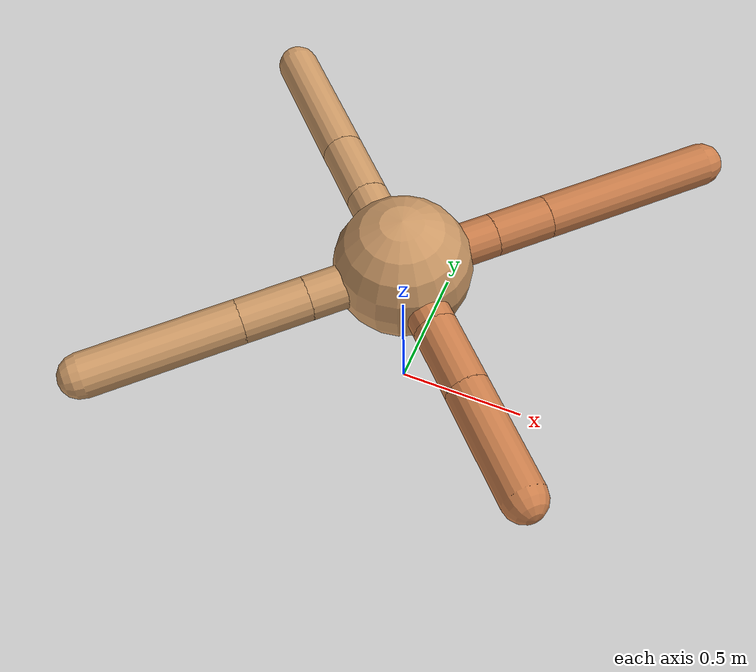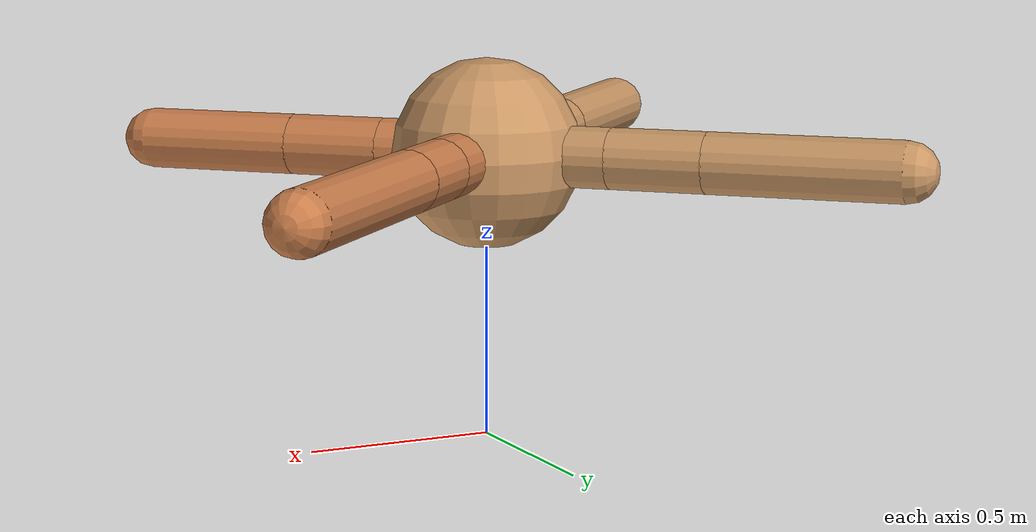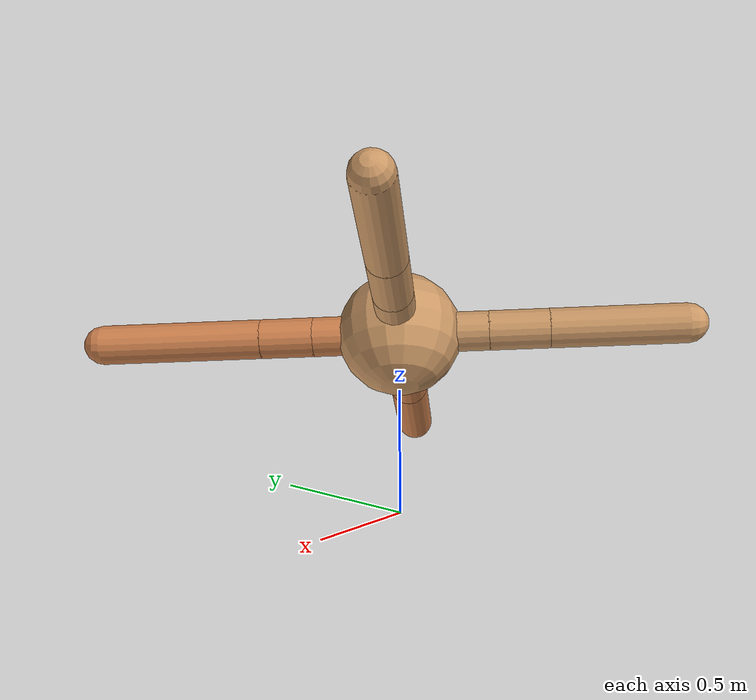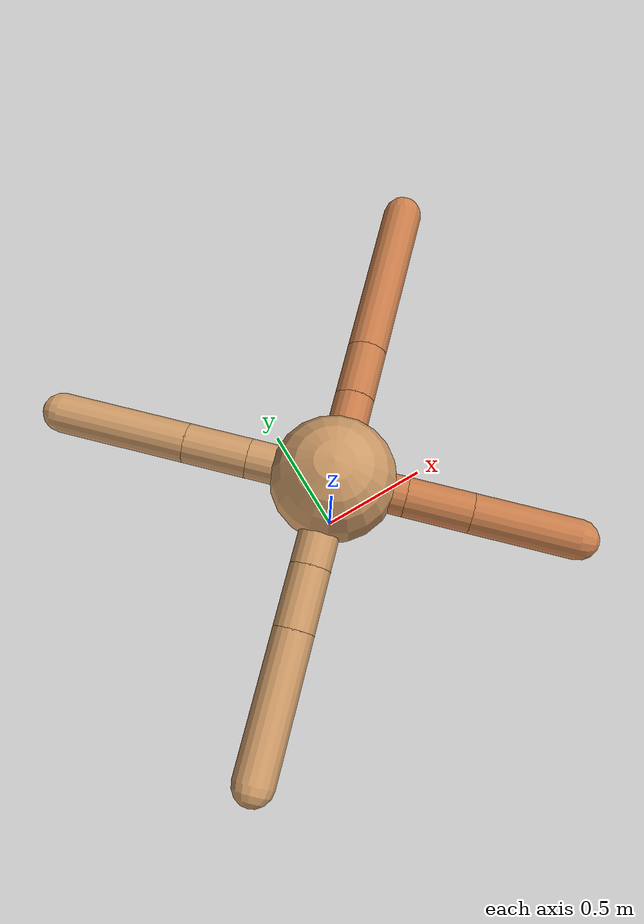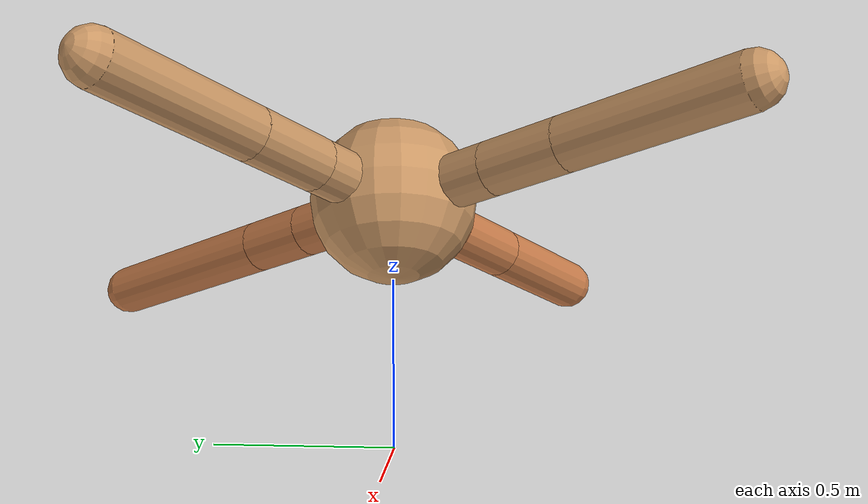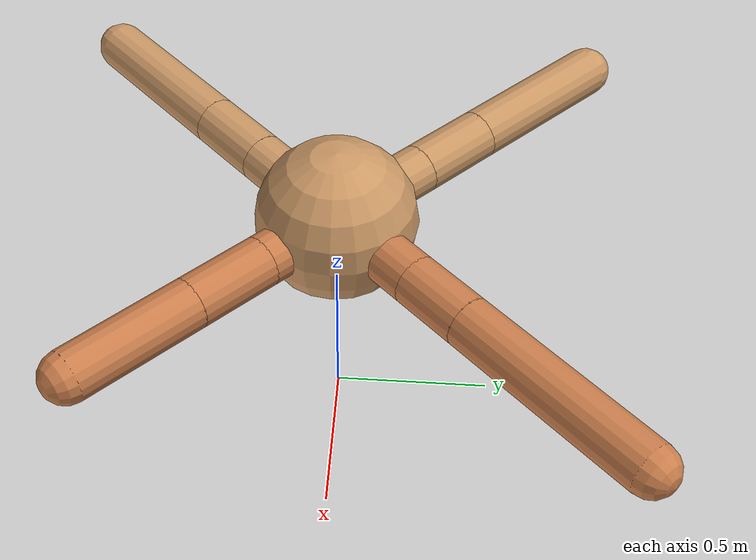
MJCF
<mujoco model="ant">
  <compiler angle="degree" coordinate="local" inertiafromgeom="true" />
  <option integrator="RK4" timestep="0.01" />
  <custom>
    <numeric data="0.0 0.0 0.55 1.0 0.0 0.0 0.0 0.0 1.0 0.0 -1.0 0.0 -1.0 0.0 1.0" name="init_qpos" />
  </custom>
  <default>
    <joint armature="1" damping="1" limited="true" />
    <geom conaffinity="0" condim="3" density="5.0" friction="1.5 0.1 0.1" margin="0.01" rgba="0.8 0.6 0.4 1" />
  </default>
  <worldbody>
    <body name="torso" pos="0 0 0.75">
      <geom name="torso_geom" pos="0 0 0" size="0.25" type="sphere" />

      <body name="front_left_leg" pos="0 0 0">
        <geom fromto="0.0 0.0 0.0 0.2466715834255073 0.2466715834255073 0.0" name="aux_1_geom" size="0.08" type="capsule" rgba=".8 .5 .3 1" />
        <body name="aux_1" pos="0.2466715834255073 0.2466715834255073 0.0">
          <joint axis="0 0 1" name="hip_1" pos="0.0 0.0 0.0" range="-40 40" type="hinge" />
          <geom fromto="0.0 0.0 0.0 0.15245155355471574 0.15245155355471574 0.0" name="left_leg_geom" size="0.08" type="capsule" rgba=".8 .5 .3 1" />
          <body pos="0.15245155355471574 0.15245155355471574 0.0" name="front_left_foot">
            <joint axis="-1 1 0" name="ankle_1" pos="0.0 0.0 0.0" range="30 100" type="hinge" />
            <geom fromto="0.0 0.0 0.0 0.46786893887945225 0.46786893887945225 0.0" name="left_ankle_geom" size="0.08" type="capsule" rgba=".8 .5 .3 1" />
          </body>
        </body>
      </body>
      <body name="front_right_leg" pos="0 0 0">
        <geom fromto="0.0 0.0 0.0 -0.24034445376594463 0.24034445376594463 0.0" name="aux_2_geom" size="0.08" type="capsule" />
        <body name="aux_2" pos="-0.24034445376594463 0.24034445376594463 0.0">
          <joint axis="0 0 1" name="hip_2" pos="0.0 0.0 0.0" range="-40 40" type="hinge" />
          <geom fromto="0.0 0.0 0.0 -0.17999208756811727 0.17999208756811727 0.0" name="right_leg_geom" size="0.08" type="capsule" />
          <body pos="-0.17999208756811727 0.17999208756811727 0.0" name="front_right_foot">
            <joint axis="1 1 0" name="ankle_2" pos="0.0 0.0 0.0" range="-100 -30" type="hinge" />
            <geom fromto="0.0 0.0 0.0 -0.3641016729304366 0.3641016729304366 0.0" name="right_ankle_geom" size="0.08" type="capsule" />
          </body>
        </body>
      </body>
      <body name="left_back_leg" pos="0 0 0">
        <geom fromto="0.0 0.0 0.0 -0.25475265194497826 -0.25475265194497826 0.0" name="aux_3_geom" size="0.08" type="capsule" />
        <body name="aux_3" pos="-0.25475265194497826 -0.25475265194497826 0.0">
          <joint axis="0 0 1" name="hip_3" pos="0.0 0.0 0.0" range="-40 40" type="hinge" />
          <geom fromto="0.0 0.0 0.0 -0.1708836752306367 -0.1708836752306367 0.0" name="back_leg_geom" size="0.08" type="capsule" />
          <body pos="-0.1708836752306367 -0.1708836752306367 0.0" name="left_back_foot">
            <joint axis="-1 1 0" name="ankle_3" pos="0.0 0.0 0.0" range="-100 -30" type="hinge" />
            <geom fromto="0.0 0.0 0.0 -0.38469100042217674 -0.38469100042217674 0.0" name="third_ankle_geom" size="0.08" type="capsule" />
          </body>
        </body>
      </body>
      <body name="right_back_leg" pos="0 0 0">
        <geom fromto="0.0 0.0 0.0 0.20296356849251387 -0.20296356849251387 0.0" name="aux_4_geom" size="0.08" type="capsule" rgba=".8 .5 .3 1" />
        <body name="aux_4" pos="0.20296356849251387 -0.20296356849251387 0.0">
          <joint axis="0 0 1" name="hip_4" pos="0.0 0.0 0.0" range="-40 40" type="hinge" />
          <geom fromto="0.0 0.0 0.0 0.1818525423009603 -0.1818525423009603 0.0" name="rightback_leg_geom" size="0.08" type="capsule" rgba=".8 .5 .3 1" />
          <body pos="0.1818525423009603 -0.1818525423009603 0.0" name="right_back_foot">
            <joint axis="1 1 0" name="ankle_4" pos="0.0 0.0 0.0" range="30 100" type="hinge" />
            <geom fromto="0.0 0.0 0.0 0.29231521049622755 -0.29231521049622755 0.0" name="fourth_ankle_geom" size="0.08" type="capsule" rgba=".8 .5 .3 1" />
          </body>
        </body>
      </body>
    </body>
  </worldbody>
  <actuator>
    <motor ctrllimited="true" ctrlrange="-1.0 1.0" joint="hip_4" gear="150" />
    <motor ctrllimited="true" ctrlrange="-1.0 1.0" joint="ankle_4" gear="150" />
    <motor ctrllimited="true" ctrlrange="-1.0 1.0" joint="hip_1" gear="150" />
    <motor ctrllimited="true" ctrlrange="-1.0 1.0" joint="ankle_1" gear="150" />
    <motor ctrllimited="true" ctrlrange="-1.0 1.0" joint="hip_2" gear="150" />
    <motor ctrllimited="true" ctrlrange="-1.0 1.0" joint="ankle_2" gear="150" />
    <motor ctrllimited="true" ctrlrange="-1.0 1.0" joint="hip_3" gear="150" />
    <motor ctrllimited="true" ctrlrange="-1.0 1.0" joint="ankle_3" gear="150" />
  </actuator>
</mujoco>
